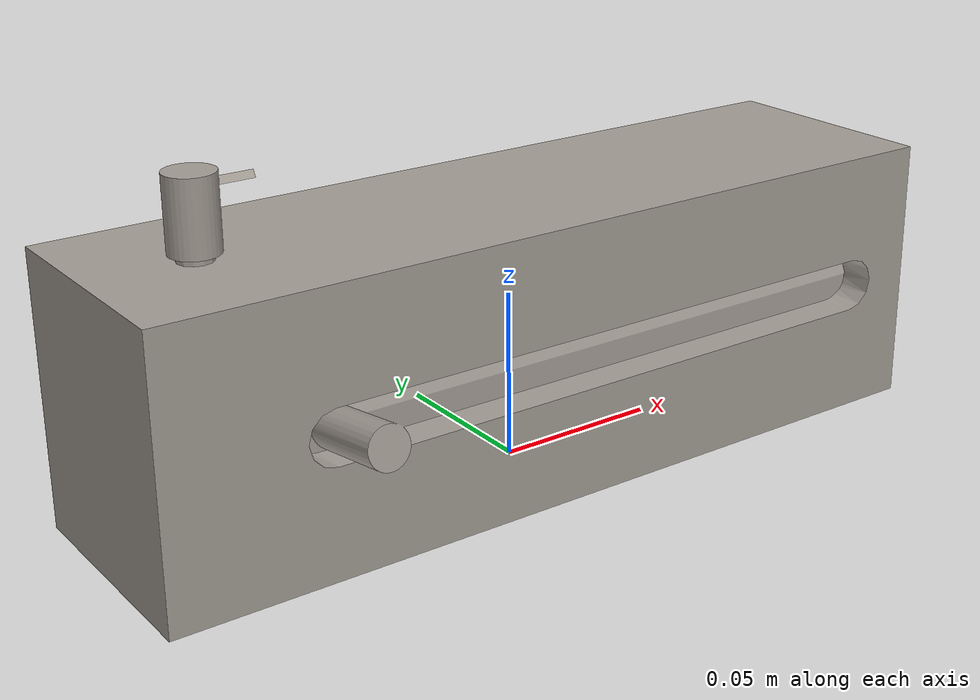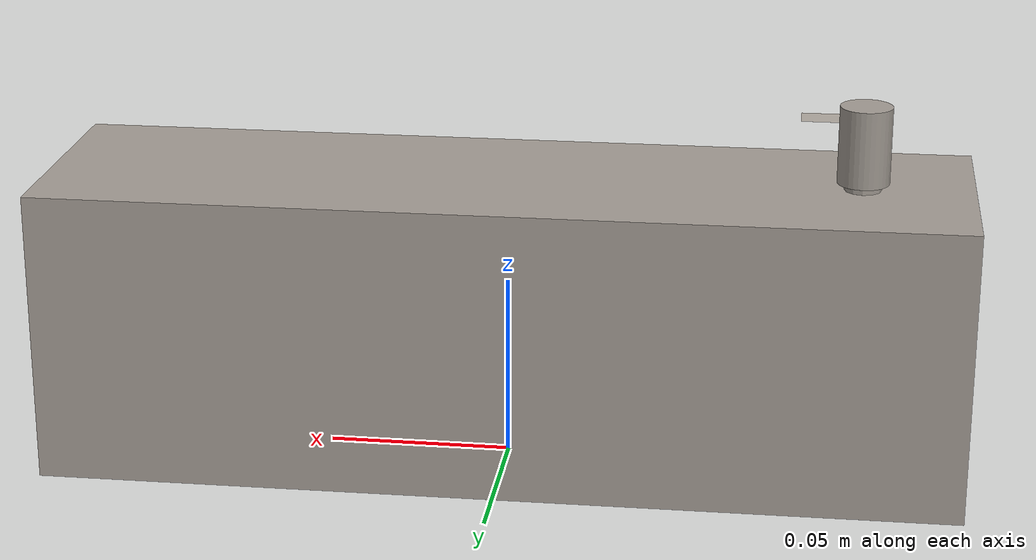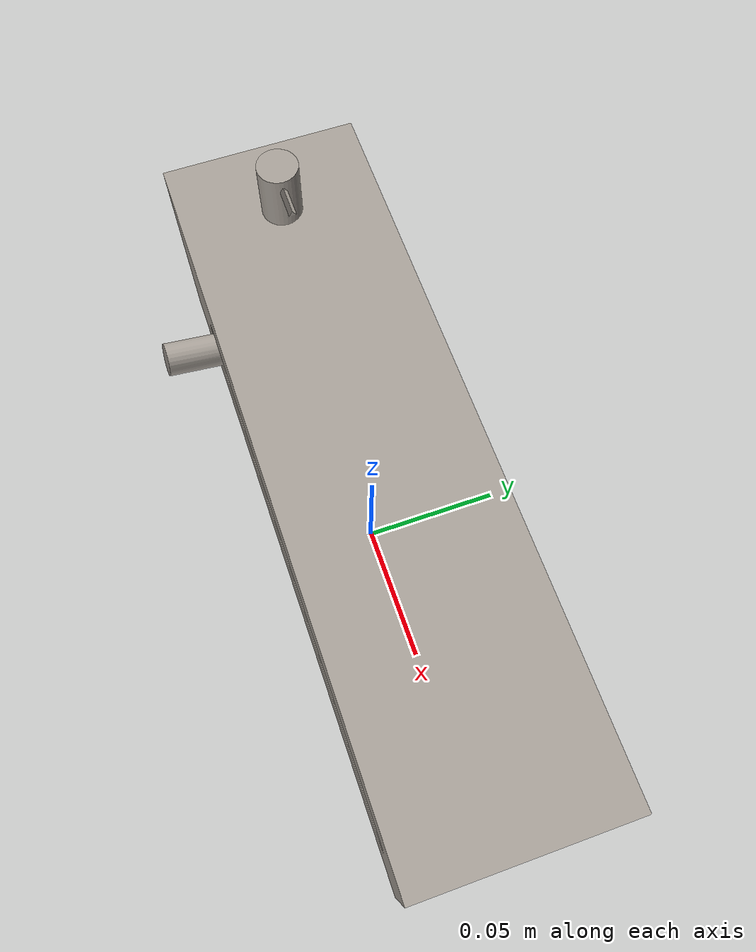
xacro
<?xml version="1.0" encoding="utf-8"?>
<robot
  name="prismatic_revolute_test">

  <link name="world"/>

  <link
    name="base_link">
    <inertial>
      <origin
        xyz="-0.00924680398009799 0.00104160031150692 0.0422256273136482"
        rpy="0 0 0" />
      <mass
        value="7.5481740008968" />
      <inertia
        ixx="0.00906108134512229"
        ixy="-0.000174911171286187"
        ixz="-0.000420717184081215"
        iyy="0.0482241089727205"
        iyz="1.49374376500163E-05"
        izz="0.0466921544163068" />
    </inertial>
    <visual>
      <origin
        xyz="0 0 0"
        rpy="0 0 0" />
      <geometry>
        <mesh
          filename="package://robots/meshes/prismatic_revolute_test/base_link.STL" />
      </geometry>
      <material
        name="">
        <color
          rgba="0.647058823529412 0.619607843137255 0.588235294117647 1" />
      </material>
    </visual>
    <collision>
      <origin
        xyz="0 0 0"
        rpy="0 0 0" />
      <geometry>
        <mesh
          filename="package://robots/meshes/prismatic_revolute_test/base_link.STL" />
      </geometry>
    </collision>
  </link>

  <joint name="fixed" type="fixed">
	<parent link="world"/>
	<child link="base_link"/>
  </joint>

  <link
    name="linear">
    <inertial>
      <origin
        xyz="0.10425 0.00026399 0.00021329"
        rpy="0 0 0" />
      <mass
        value="3.2837" />
      <inertia
        ixx="0.0010201"
        ixy="2.342E-20"
        ixz="1.8737E-19"
        iyy="0.012482"
        iyz="-2.6529E-07"
        izz="0.012481" />
    </inertial>
    <visual>
      <origin
        xyz="0 0 0"
        rpy="0 0 0" />
      <geometry>
        <mesh
          filename="package://robots/meshes/prismatic_revolute_test/linear.STL" />
      </geometry>
      <material
        name="">
        <color
          rgba="0.64706 0.61961 0.58824 1" />
      </material>
    </visual>
    <collision>
      <origin
        xyz="0 0 0"
        rpy="0 0 0" />
      <geometry>
        <mesh
          filename="package://robots/meshes/prismatic_revolute_test/linear.STL" />
      </geometry>
    </collision>
  </link>

  <joint
    name="linear_joint"
    type="prismatic">
    <origin
      xyz="-0.085 -0.00010501 0.034788"
      rpy="1.5708 0 0" />
    <parent
      link="base_link" />
    <child
      link="linear" />
    <axis
      xyz="1 0 0" />
    <limit
      lower="0"
      upper="0.18"
      effort="30"
      velocity="1" />
  </joint>

  <link
    name="rotation">
    <inertial>
      <origin
        xyz="0.00030237 0.011805 7.3558E-06"
        rpy="0 0 0" />
      <mass
        value="0.0078672" />
      <inertia
        ixx="4.8013E-07"
        ixy="4.2764E-24"
        ixz="1.9852E-23"
        iyy="3.0575E-07"
        iyz="-1.5642E-12"
        izz="4.8172E-07" />
    </inertial>
    <visual>
      <origin
        xyz="0 0 0"
        rpy="0 0 0" />
      <geometry>
        <mesh
          filename="package://robots/meshes/prismatic_revolute_test/rotation.STL" />
      </geometry>
      <material
        name="">
        <color
          rgba="0.64706 0.61961 0.58824 1" />
      </material>
    </visual>
    <collision>
      <origin
        xyz="0 0 0"
        rpy="0 0 0" />
      <geometry>
        <mesh
          filename="package://robots/meshes/prismatic_revolute_test/rotation.STL" />
      </geometry>
    </collision>
  </link>

  <joint
    name="rotation_joint"
    type="revolute">
    <origin
      xyz="-0.095027 0 0.082"
      rpy="1.5708 0 0" />
    <parent
      link="base_link" />
    <child
      link="rotation" />
    <axis
      xyz="0 1 0" />
    <limit
      lower="0"
      upper="1.5708"
      effort="30"
      velocity="1" />
    <mimic
      joint="linear_joint"
      multiplier="8.72666666667"
      offset="0" />
  </joint>

</robot>
